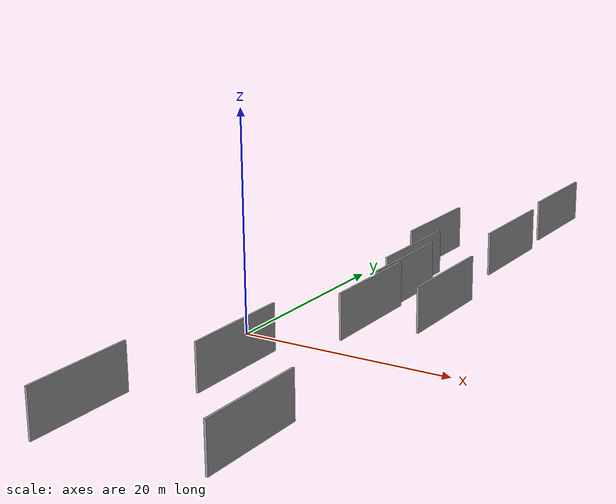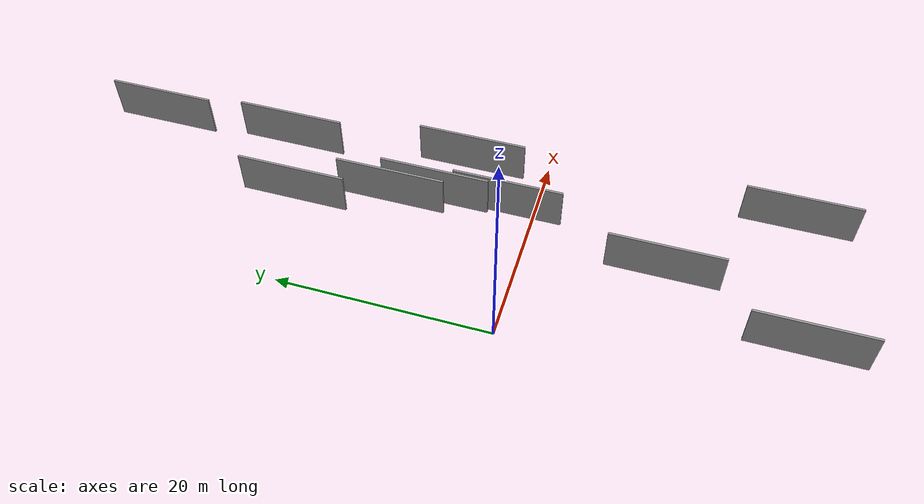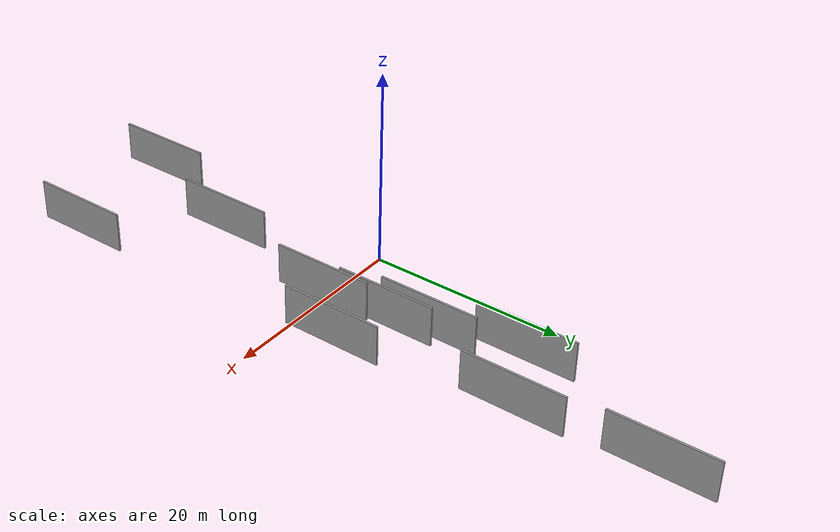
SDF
<sdf version="1.6">
 <world name="default">
  <scene>
   <sky><clouds><speed>12</speed></clouds></sky>
   <ambient>0.4 0.4 0.4 1</ambient>
   <background>0.7 0.7 0.7 1</background>
   <shadows>1</shadows>
  </scene>
  <gravity>0 0 -9.8066</gravity>
  <magnetic_field>6e-06 2.3e-05 -4.2e-05</magnetic_field>
  <physics default="0" name="default_physics" type="ode">
   <ode>
    <solver>
     <type>quick</type>
     <iters>10</iters>
     <sor>1.0</sor>
     <use_dynamic_moi_rescaling>0</use_dynamic_moi_rescaling>
    </solver>
    <constraints>
     <cfm>0</cfm>
     <erp>0.2</erp>
     <contact_max_correcting_vel>100</contact_max_correcting_vel>
     <contact_surface_layer>0.001</contact_surface_layer>
    </constraints>
   </ode>
   <max_step_size>0.004</max_step_size>
   <real_time_factor>1</real_time_factor>
   <real_time_update_rate>250</real_time_update_rate>
  </physics>
  <light name="sun" type="directional">
   <pose>0 0 10 0 0 0</pose>
   <diffuse>0.8 0.8 0.8 1</diffuse>
   <specular>0.2 0.2 0.2 1</specular>
   <attenuation>
    <range>1000</range>
    <constant>0.9</constant>
    <linear>0.01</linear>
    <quadratic>0.001</quadratic>
   </attenuation>
   <direction>-0.5 0.1 -0.9</direction>
  </light>
  <model name="grey_wall_1">
   <static>1</static>
   <pose>14.2534 23.8551 2.5 0.000000 0.000000 1.570796</pose>
   <link name="link">
    <pose>0 0 2.00 0 0 0</pose>
    <collision name="collision"><geometry><box><size>10.00 0.2 4.00</size></box></geometry></collision>
    <visual name="visual">
     <cast_shadows>0</cast_shadows>
     <geometry><box><size>10.00 0.2 4.00</size></box></geometry>
     <material>
      <script>
       <uri>model://grey_wall/materials/scripts</uri>
       <uri>model://grey_wall/materials/textures</uri>
       <name>vrc/grey_wall</name>
      </script>
     </material>
    </visual>
   </link>
  </model>
  <model name="grey_wall_2">
   <static>1</static>
   <pose>16.9334 -23.0556 2.5 0.000000 0.000000 1.570796</pose>
   <link name="link">
    <pose>0 0 2.00 0 0 0</pose>
    <collision name="collision"><geometry><box><size>10.00 0.2 4.00</size></box></geometry></collision>
    <visual name="visual">
     <cast_shadows>0</cast_shadows>
     <geometry><box><size>10.00 0.2 4.00</size></box></geometry>
     <material>
      <script>
       <uri>model://grey_wall/materials/scripts</uri>
       <uri>model://grey_wall/materials/textures</uri>
       <name>vrc/grey_wall</name>
      </script>
     </material>
    </visual>
   </link>
  </model>
  <model name="grey_wall_3">
   <static>1</static>
   <pose>7.6063 20.9873 2.5 0.000000 0.000000 1.570796</pose>
   <link name="link">
    <pose>0 0 2.00 0 0 0</pose>
    <collision name="collision"><geometry><box><size>10.00 0.2 4.00</size></box></geometry></collision>
    <visual name="visual">
     <cast_shadows>0</cast_shadows>
     <geometry><box><size>10.00 0.2 4.00</size></box></geometry>
     <material>
      <script>
       <uri>model://grey_wall/materials/scripts</uri>
       <uri>model://grey_wall/materials/textures</uri>
       <name>vrc/grey_wall</name>
      </script>
     </material>
    </visual>
   </link>
  </model>
  <model name="grey_wall_4">
   <static>1</static>
   <pose>13.5946 36.9021 2.5 0.000000 0.000000 1.570796</pose>
   <link name="link">
    <pose>0 0 2.00 0 0 0</pose>
    <collision name="collision"><geometry><box><size>10.00 0.2 4.00</size></box></geometry></collision>
    <visual name="visual">
     <cast_shadows>0</cast_shadows>
     <geometry><box><size>10.00 0.2 4.00</size></box></geometry>
     <material>
      <script>
       <uri>model://grey_wall/materials/scripts</uri>
       <uri>model://grey_wall/materials/textures</uri>
       <name>vrc/grey_wall</name>
      </script>
     </material>
    </visual>
   </link>
  </model>
  <model name="grey_wall_5">
   <static>1</static>
   <pose>10.9785 8.6805 2.5 0.000000 0.000000 1.570796</pose>
   <link name="link">
    <pose>0 0 2.00 0 0 0</pose>
    <collision name="collision"><geometry><box><size>10.00 0.2 4.00</size></box></geometry></collision>
    <visual name="visual">
     <cast_shadows>0</cast_shadows>
     <geometry><box><size>10.00 0.2 4.00</size></box></geometry>
     <material>
      <script>
       <uri>model://grey_wall/materials/scripts</uri>
       <uri>model://grey_wall/materials/textures</uri>
       <name>vrc/grey_wall</name>
      </script>
     </material>
    </visual>
   </link>
  </model>
  <model name="grey_wall_6">
   <static>1</static>
   <pose>8.1113 -12.5162 2.5 0.000000 0.000000 1.570796</pose>
   <link name="link">
    <pose>0 0 2.00 0 0 0</pose>
    <collision name="collision"><geometry><box><size>10.00 0.2 4.00</size></box></geometry></collision>
    <visual name="visual">
     <cast_shadows>0</cast_shadows>
     <geometry><box><size>10.00 0.2 4.00</size></box></geometry>
     <material>
      <script>
       <uri>model://grey_wall/materials/scripts</uri>
       <uri>model://grey_wall/materials/textures</uri>
       <name>vrc/grey_wall</name>
      </script>
     </material>
    </visual>
   </link>
  </model>
  <model name="grey_wall_7">
   <static>1</static>
   <pose>11.3998 2.0503 2.5 0.000000 0.000000 1.570796</pose>
   <link name="link">
    <pose>0 0 2.00 0 0 0</pose>
    <collision name="collision"><geometry><box><size>10.00 0.2 4.00</size></box></geometry></collision>
    <visual name="visual">
     <cast_shadows>0</cast_shadows>
     <geometry><box><size>10.00 0.2 4.00</size></box></geometry>
     <material>
      <script>
       <uri>model://grey_wall/materials/scripts</uri>
       <uri>model://grey_wall/materials/textures</uri>
       <name>vrc/grey_wall</name>
      </script>
     </material>
    </visual>
   </link>
  </model>
  <model name="grey_wall_8">
   <static>1</static>
   <pose>9.7895 12.4520 2.5 0.000000 0.000000 1.570796</pose>
   <link name="link">
    <pose>0 0 2.00 0 0 0</pose>
    <collision name="collision"><geometry><box><size>10.00 0.2 4.00</size></box></geometry></collision>
    <visual name="visual">
     <cast_shadows>0</cast_shadows>
     <geometry><box><size>10.00 0.2 4.00</size></box></geometry>
     <material>
      <script>
       <uri>model://grey_wall/materials/scripts</uri>
       <uri>model://grey_wall/materials/textures</uri>
       <name>vrc/grey_wall</name>
      </script>
     </material>
    </visual>
   </link>
  </model>
  <model name="grey_wall_9">
   <static>1</static>
   <pose>3.5355 -24.8062 2.5 0.000000 0.000000 1.570796</pose>
   <link name="link">
    <pose>0 0 2.00 0 0 0</pose>
    <collision name="collision"><geometry><box><size>10.00 0.2 4.00</size></box></geometry></collision>
    <visual name="visual">
     <cast_shadows>0</cast_shadows>
     <geometry><box><size>10.00 0.2 4.00</size></box></geometry>
     <material>
      <script>
       <uri>model://grey_wall/materials/scripts</uri>
       <uri>model://grey_wall/materials/textures</uri>
       <name>vrc/grey_wall</name>
      </script>
     </material>
    </visual>
   </link>
  </model>
  <model name="grey_wall_10">
   <static>1</static>
   <pose>16.0024 6.6384 2.5 0.000000 0.000000 1.570796</pose>
   <link name="link">
    <pose>0 0 2.00 0 0 0</pose>
    <collision name="collision"><geometry><box><size>10.00 0.2 4.00</size></box></geometry></collision>
    <visual name="visual">
     <cast_shadows>0</cast_shadows>
     <geometry><box><size>10.00 0.2 4.00</size></box></geometry>
     <material>
      <script>
       <uri>model://grey_wall/materials/scripts</uri>
       <uri>model://grey_wall/materials/textures</uri>
       <name>vrc/grey_wall</name>
      </script>
     </material>
    </visual>
   </link>
  </model>
 </world>
</sdf>
